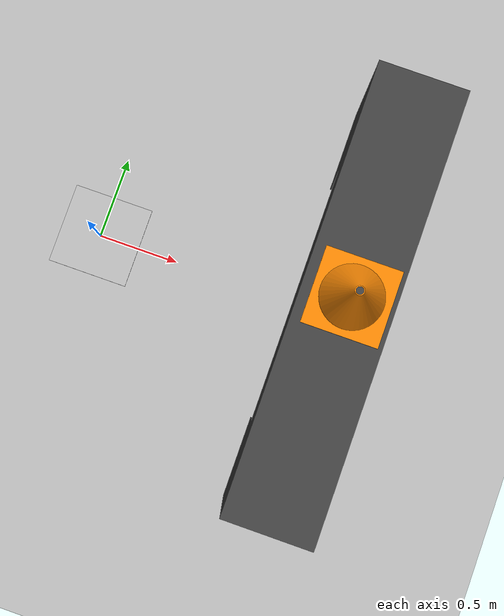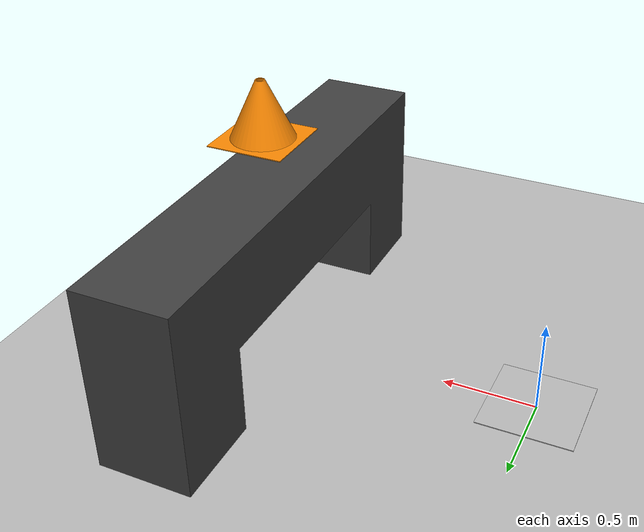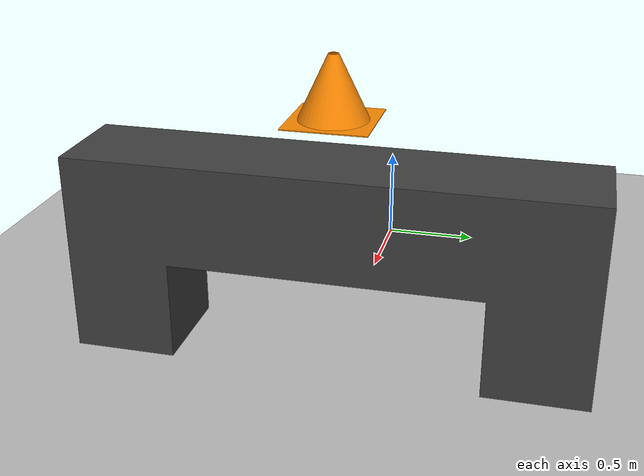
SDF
<?xml version="1.0" ?>
<sdf version="1.6">
  <world name="lockndrop">

    <!-- LIGHT -->
    <include>
      <uri>model://sun</uri>
    </include>

    <!-- GROUND -->
    <include>
      <uri>model://parquet_plane</uri>
      <pose>0 0 0 0 0 0</pose>
    </include>

    <!-- CAMERA LIGHT FIX (optional stability boost) -->
    <scene>
      <ambient>0.6 0.6 0.6 1</ambient>
      <background>0.7 0.8 1 1</background>
      <shadows>true</shadows>
      <grid>false</grid>
    </scene>

    <!-- Landing Pad -->
    <include>
      <uri>model://landing_pad</uri>
      <pose>0 0 0 0 0 0</pose>
    </include>

    <!-- lightweight physics -->

    <!-- heavy physics -->

    <!-- YOUR CONE -->
    <include>
      <uri>model://orange_cone</uri>
      <pose>1.5 0 1.2 0 0 0</pose>
    </include>

    <!-- YOUR PLATFORM -->
    <include>
      <uri>model://platform</uri>
      <pose>1.50 0 0 0 0 1.5708</pose>
    </include>

    <!-- DRONE START POSITION -->

  </world>
</sdf>

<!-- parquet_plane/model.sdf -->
<sdf version="1.5">
  <model name="parquet_plane">
    <static>true</static>
    <link name="link">
      <collision name="collision">
        <geometry>
          <box>
            <size>200 200 .02</size>
          </box>
        </geometry>
      </collision>
      <visual name="visual">
        <cast_shadows>false</cast_shadows>
        <geometry>
          <box>
            <size>200 200 .02</size>
          </box>
        </geometry>
        <material>
          <script>
            <uri>model://parquet_plane/materials/scripts</uri>
            <uri>model://parquet_plane/materials/textures</uri>
            <name>parquet</name>
          </script>
        </material>
      </visual>
    </link>
  </model>
</sdf>

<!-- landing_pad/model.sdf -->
<sdf version="1.6">

<model name="landing_pad">

  <static>true</static>

  <link name="pad">

    <collision name="collision">

      <pose>0 0 0.01 0 0 0</pose>

      <geometry>
        <box>
          <size>0.50 0.50 0.01</size>
        </box>
      </geometry>
    </collision>

    <visual name="visual">

      <pose>0 0 0.01 0 0 0</pose>

      <geometry>
        <box>
          <size>0.50 0.50 0.01</size>
        </box>
      </geometry>

      <material>

        <script>
          <uri>model://landing_pad/materials/scripts</uri>
          <uri>model://landing_pad/materials/textures</uri>
          <name>LandingPad/Texture</name>
        </script>

      </material>

    </visual>

  </link>

</model>
</sdf>

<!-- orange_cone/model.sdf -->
<sdf version="1.6">

  <model name="orange_cone">

    <!-- IMPORTANT -->
    <!-- false = movable -->
    <static>false</static>

    <link name="cone_link">

      <!-- Initial pose -->
      <pose>0 0 0 0 0 0</pose>

      <!-- Physics -->
      <inertial>
        <mass>0.35</mass>

        <inertia>
          <ixx>0.01</ixx>
          <iyy>0.01</iyy>
          <izz>0.01</izz>

          <ixy>0.0</ixy>
          <ixz>0.0</ixz>
          <iyz>0.0</iyz>
        </inertia>
      </inertial>

      <!-- VISUAL -->
      <visual name="visual">

        <geometry>
          <mesh>
            <uri>model://orange_cone/meshes/orange_cone.dae</uri>

            <material>

                <!-- base color -->
                <ambient>1 0.45 0 1</ambient>
                <diffuse>1 0.45 0 1</diffuse>
                <specular>0.1 0.1 0.1 1</specular>
                <emissive>0 0 0 1</emissive>

                <!-- remove ugly reflections -->

                <!-- no glow -->

            </material>

            <!-- scale if needed -->
            <scale>1 1 1</scale>
          </mesh>
        </geometry>

      </visual>

      <!-- COLLISION -->
      <collision name="collision">

        <geometry>
          <mesh>
            <uri>model://orange_cone/meshes/orange_cone.dae</uri>

            <!-- SAME SCALE -->
            <scale>1 1 1</scale>
          </mesh>
        </geometry>

        <!-- collision physics -->
        <surface>
          <friction>
            <ode>
              <mu>1.0</mu>
              <mu2>1.0</mu2>
            </ode>
          </friction>

          <bounce/>

          <contact>
            <ode/>
          </contact>
        </surface>

      </collision>

    </link>

  </model>
</sdf>

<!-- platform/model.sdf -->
<sdf version="1.6">

  <model name="platform">

    <static>true</static>

    <link name="platform_link">

      <!-- VISUAL -->
      <visual name="visual">

        <geometry>
          <mesh>
            <uri>model://platform/meshes/platform.dae</uri>

            <!-- SCALE -->
            <scale>1 1 1</scale>

          </mesh>
        </geometry>

         <material>

          <!-- base color -->
          <ambient>0.2 0.2 0.2 1</ambient>
          <diffuse>0.25 0.25 0.25 1</diffuse>
          <specular>0 0 0 1</specular>
          <emissive>0 0 0 1</emissive>

          <!-- remove ugly reflections -->

          <!-- no glow -->

        </material>

      </visual>

      <collision name="collision">

        <!-- slightly lower collision for stability -->
        <pose>0 0 0.5 0 0 0</pose>

        <geometry>
          <box>
            <size>1.5 0.5 1.0</size>
          </box>
        </geometry>

        <surface>

          <!-- friction tuning -->
          <friction>
            <ode>
              <mu>0.35</mu>
              <mu2>0.35</mu2>
            </ode>
          </friction>

          <!-- softer contacts -->
          <contact>
            <ode>
              <kp>100000</kp>
              <kd>1</kd>
            </ode>
          </contact>

          <!-- bounce -->
          <bounce>
            <restitution_coefficient>0.05</restitution_coefficient>
            <threshold>0.01</threshold>
          </bounce>

        </surface>

      </collision>

    </link>

  </model>

</sdf>
